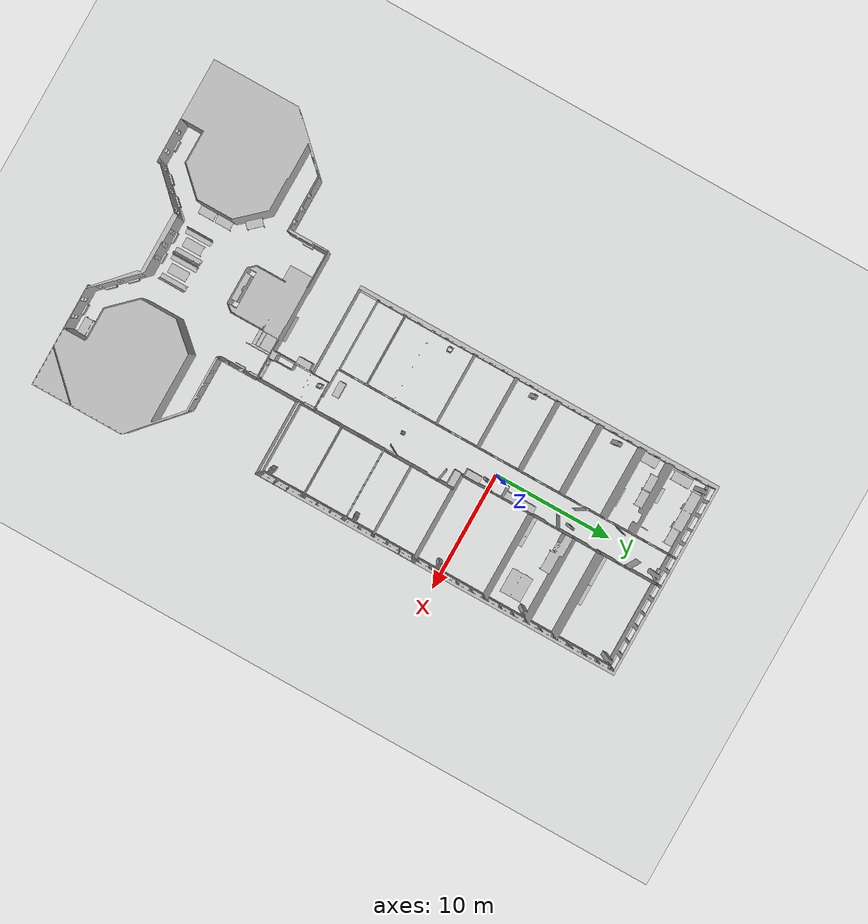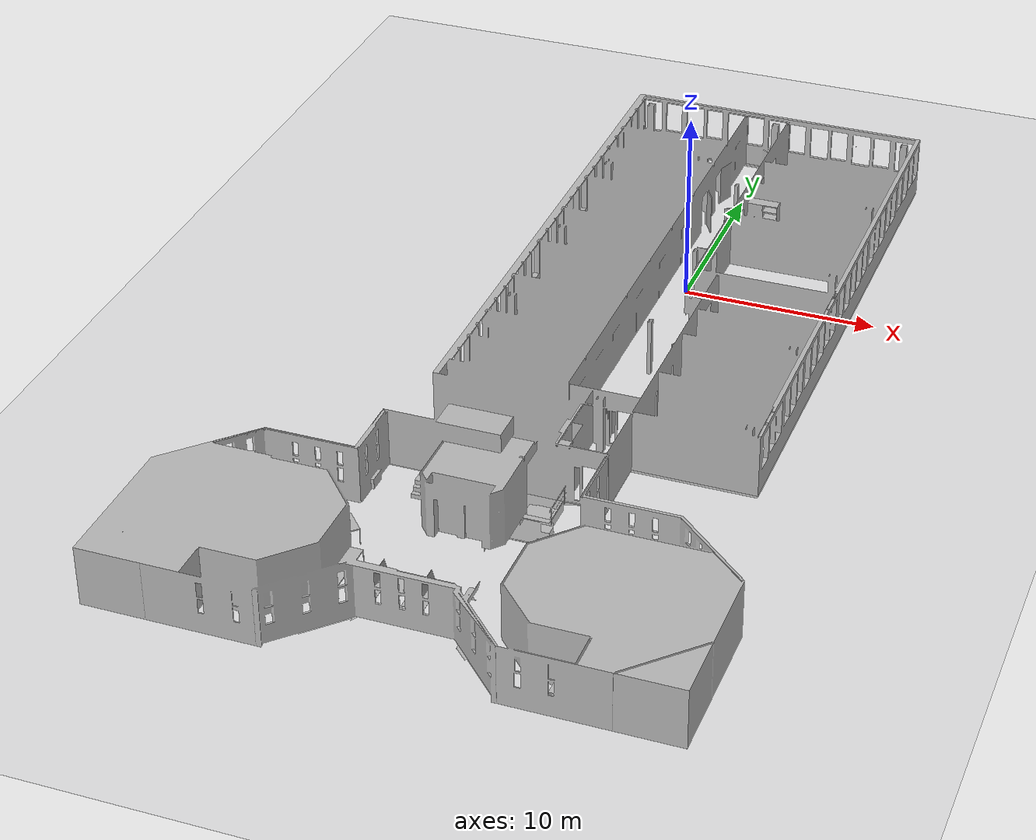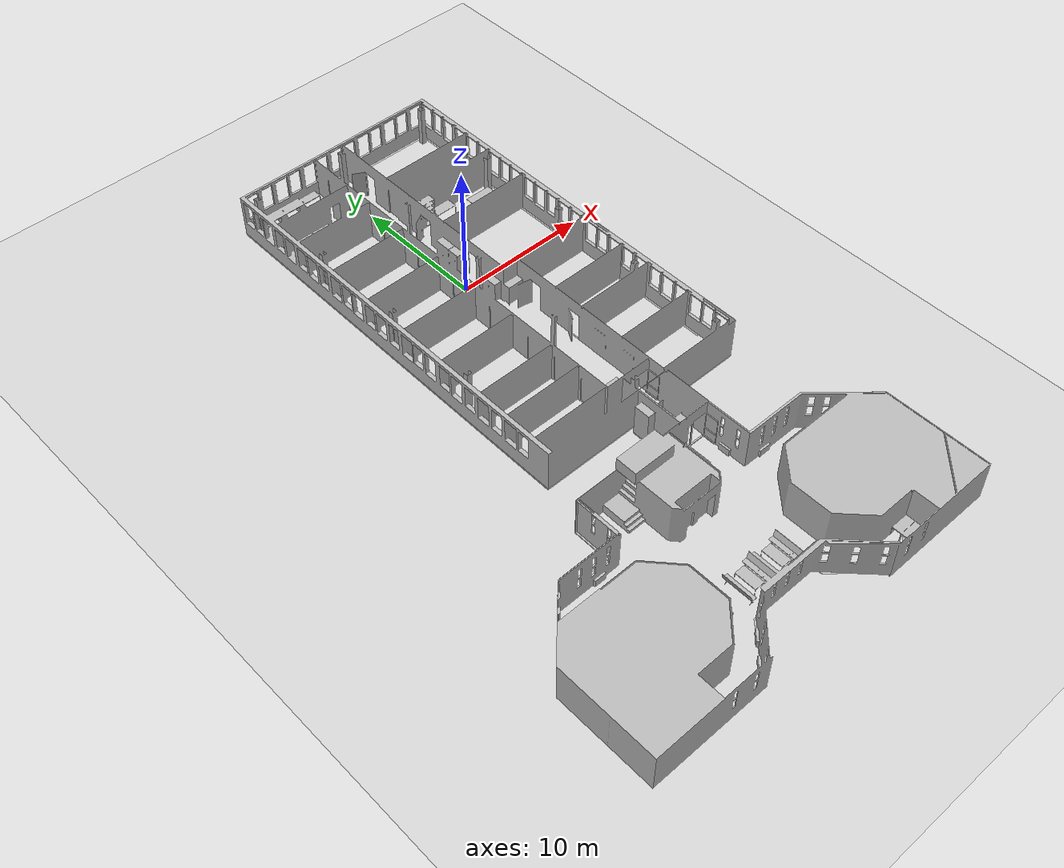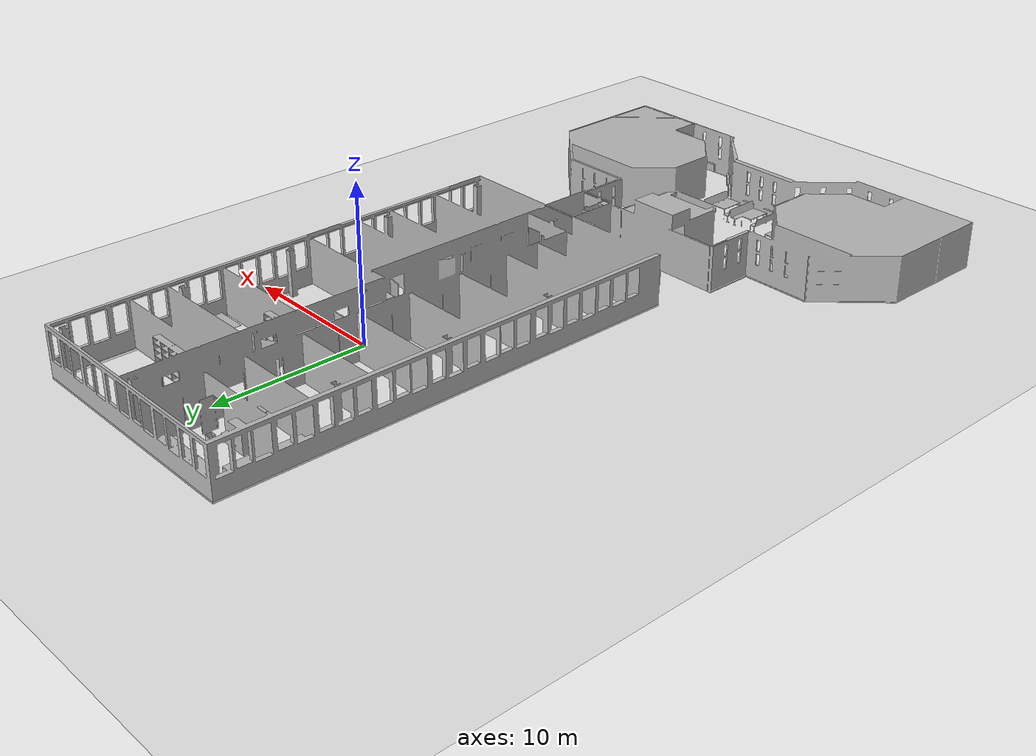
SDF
<?xml version="1.0" ?>
<sdf version="1.4">
  <world name="default">
    <scene>
      <ambient>0.5 0.5 0.5 1</ambient>
      <background>0.5 0.5 0.5 1</background>
      <shadows>false</shadows>
    </scene>

    <!-- Ground Plane -->
    <model name="plane1_model">
      <link name="body">
        <collision name="geom_1">
          <geometry>
            <plane>
              <normal>0 0 1</normal>
            </plane>
          </geometry>
          <surface>
            <friction>
              <ode>
                <mu>1.0</mu>
                <mu2>1.0</mu2>
                <fdir1>0 0 0</fdir1>
                <slip1>0</slip1>
                <slip2>0</slip2>
              </ode>
            </friction>
            <bounce>
              <restitution_coefficient>0</restitution_coefficient>
              <threshold>1000000.0</threshold>
            </bounce>
            <contact>
              <ode>
                <soft_cfm>0</soft_cfm>
                <soft_erp>0.2</soft_erp>
                <kp>1e10</kp>
                <kd>1</kd>
                <max_vel>100.0</max_vel>
                <min_depth>0.0001</min_depth>
              </ode>
            </contact>
          </surface>
        </collision>

        <visual name="visual_1">
          <geometry>
            <plane>
              <normal>0 0 1</normal>
              <size>100 100</size>
            </plane>
          </geometry>
          <material>
            <script>Gazebo/Grey</script>
          </material>
          <cast_shadows>false</cast_shadows>
        </visual>
      </link>
      <static>true</static>
    </model>

    <model name="avz_map">
      <static>true</static>
      <link name="avz_map_link">
        <pose>0 0 0 0 0 0</pose>
        <collision name="avz_map_collision">
          <geometry>
            <mesh>
              <uri>file://avz_neu_no-roof_no-floor_no-lamps_simplified.stl</uri>
              <scale>1.0 1.0 1.0</scale>
            </mesh>
          </geometry>
        </collision>
        <visual name="avz_map_visual">
          <cast_shadows>false</cast_shadows>
          <geometry>
            <mesh>
              <uri>file://avz_neu_no-roof_no-floor_no-lamps_simplified.stl</uri>
              <scale>1.0 1.0 1.0</scale>
            </mesh>
          </geometry>
        </visual>
      </link>
    </model>

    <light type="point" name="my_light">
      <pose>0 0 30 0 0 0</pose>
      <diffuse>.8 .8 .8 1</diffuse>
      <specular>.1 .1 .1 1</specular>
      <attenuation>
        <range>200</range>
        <linear>0.02</linear>
        <constant>0.1</constant>
        <quadratic>0.0</quadratic>
      </attenuation>
      <direction>0 0 -1</direction>
      <cast_shadows>false</cast_shadows>
    </light>
  </world>
</sdf>
